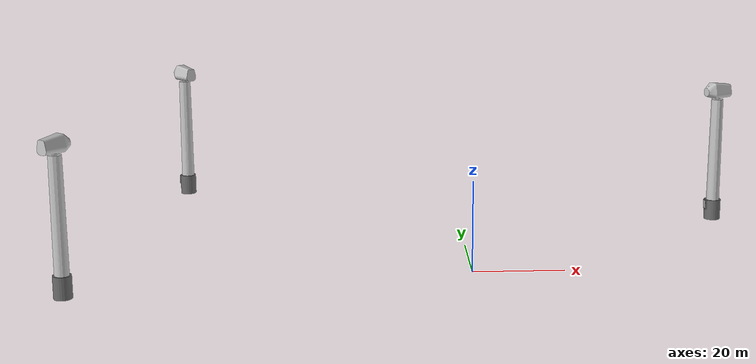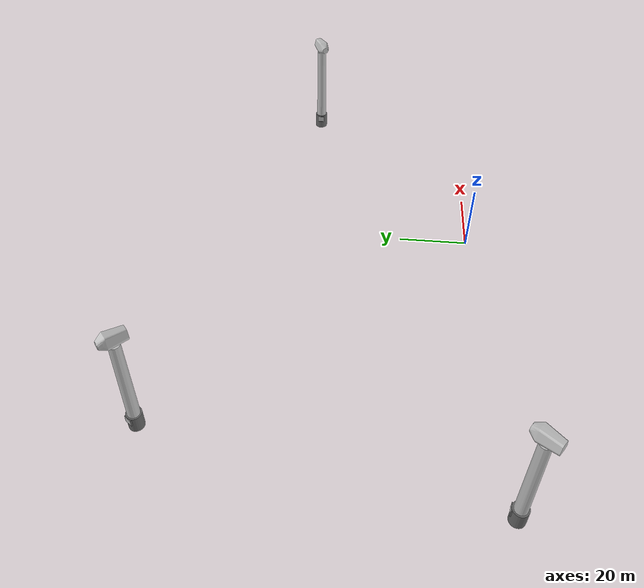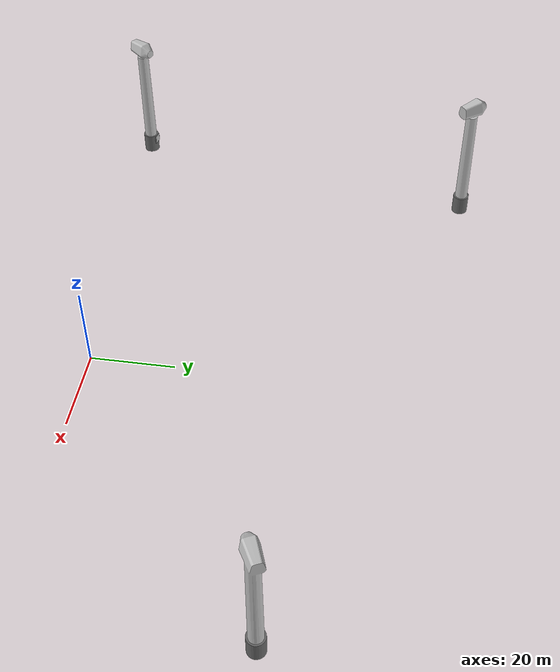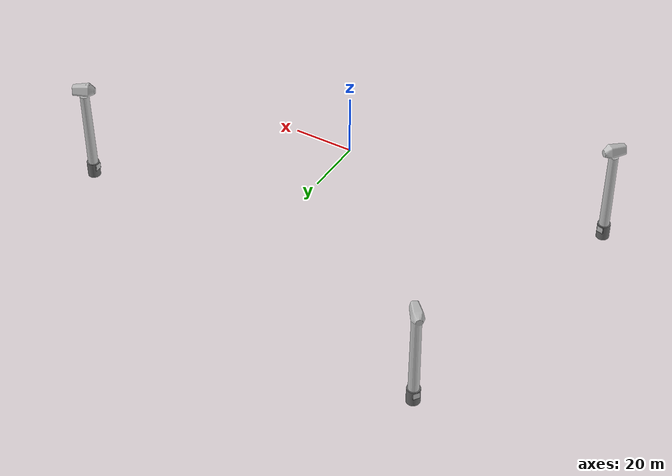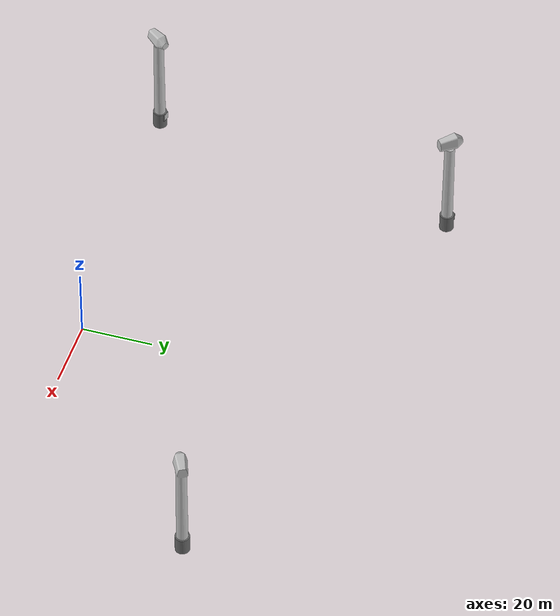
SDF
<sdf version="1.9">
 <world name="aquabot_windturbines_easy">
  <physics name="4ms" type="dart">
   <max_step_size>0.004</max_step_size>
   <real_time_factor>1.0</real_time_factor>
   <real_time_update_rate>0.0</real_time_update_rate>
  </physics>
  <plugin filename="ignition-gazebo-physics-system" name="ignition::gazebo::systems::Physics"/>
  <plugin filename="ignition-gazebo-user-commands-system" name="ignition::gazebo::systems::UserCommands"/>
  <plugin filename="ignition-gazebo-sensors-system" name="ignition::gazebo::systems::Sensors">
   <render_engine>ogre2</render_engine>
   <disable_on_drained_battery>true</disable_on_drained_battery>
  </plugin>
  <plugin filename="ignition-gazebo-imu-system" name="ignition::gazebo::systems::Imu"/>
  <plugin filename="ignition-gazebo-magnetometer-system" name="ignition::gazebo::systems::Magnetometer"/>
  <plugin filename="ignition-gazebo-forcetorque-system" name="ignition::gazebo::systems::ForceTorque"/>
  <plugin filename="ignition-gazebo-scene-broadcaster-system" name="ignition::gazebo::systems::SceneBroadcaster"/>
  <plugin filename="ignition-gazebo-contact-system" name="ignition::gazebo::systems::Contact"/>
  <plugin filename="ignition-gazebo-navsat-system" name="ignition::gazebo::systems::NavSat"/>
  <scene><grid>false</grid><ambient>1.0 1.0 1.0</ambient><background>0.8 0.8 0.8</background></scene>
  <spherical_coordinates>
   <surface_model>EARTH_WGS84</surface_model>
   <world_frame_orientation>ENU</world_frame_orientation>
   <latitude_deg>48.04630</latitude_deg>
   <longitude_deg>-4.97632</longitude_deg>
   <elevation>0.0</elevation>
   <heading_deg>0.0</heading_deg>
  </spherical_coordinates>
  <light type="directional" name="sun">
   <cast_shadows>false</cast_shadows>
   <pose>0 0 10 0 0 0</pose>
   <diffuse>0.8 0.8 0.8 1</diffuse>
   <specular>0.2 0.2 0.2 1</specular>
   <attenuation>
    <range>1000</range>
    <constant>0.9</constant>
    <linear>0.01</linear>
    <quadratic>0.001</quadratic>
   </attenuation>
   <direction>-0.5 0.1 -0.9</direction>
  </light>
  <plugin filename="libUSVWind.so" name="vrx::USVWind">
   <wind_obj>
    <name>aquabot</name>
    <link_name>aquabot/base_link</link_name>
    <coeff_vector>.5 .5 .33</coeff_vector>
   </wind_obj>
   <wind_direction>240</wind_direction>
   <wind_mean_velocity>0.0</wind_mean_velocity>
   <var_wind_gain_constants>0</var_wind_gain_constants>
   <var_wind_time_constants>2</var_wind_time_constants>
   <random_seed>10</random_seed>
   <update_rate>10</update_rate>
   <topic_wind_speed>/vrx/debug/wind/speed</topic_wind_speed>
   <topic_wind_direction>/vrx/debug/wind/direction</topic_wind_direction>
  </plugin>
  <plugin filename="libPublisherPlugin.so" name="vrx::PublisherPlugin">
   <message type="gz.msgs.Param" topic="/vrx/wavefield/parameters" every="2.0">params {
          key: "direction"
          value {
            type: DOUBLE
            double_value: 0.0
          }
        }
        params {
          key: "gain"
          value {
            type: DOUBLE
            double_value: 0.3
          }
        }
        params {
          key: "period"
          value {
            type: DOUBLE
            double_value: 10.0
          }
        }
        params {
          key: "steepness"
          value {
            type: DOUBLE
            double_value: 0.0
          }
        }</message>
  </plugin>
  <generation_seed>AHj1VjJI7VlnxRnv</generation_seed>
  <include>
   <name>aquabot_windturbine_main_0_OK</name>
   <pose>65 50 0 0 0 0.450100</pose>
   <uri>aquabot_windturbine_main</uri>
  </include>
  <include>
   <name>aquabot_marker_0_OK_0</name>
   <pose>65 50 0 0 0 6.277234</pose>
   <uri>aquabot_marker_0_OK</uri>
  </include>
  <include>
   <name>aquabot_windturbine_main_1_KO</name>
   <pose>-85.810648 -6.200278 0 0 0 4.052918</pose>
   <uri>aquabot_windturbine_main</uri>
  </include>
  <include>
   <name>aquabot_marker_1_KO_0</name>
   <pose>-85.810648 -6.200278 0 0 0 4.509710</pose>
   <uri>aquabot_marker_1_KO</uri>
  </include>
  <include>
   <name>aquabot_windturbine_main_2_KO</name>
   <pose>-70.015184 83.216586 0 0 0 5.406940</pose>
   <uri>aquabot_windturbine_main</uri>
  </include>
  <include>
   <name>aquabot_marker_2_KO_0</name>
   <pose>-70.015184 83.216586 0 0 0 5.668543</pose>
   <uri>aquabot_marker_2_KO</uri>
  </include>
  <plugin filename="libWindturbinesInspectionScoringPlugin.so" name="vrx::WindturbinesInspectionScoringPlugin">
   <vehicle>aquabot</vehicle>
   <task_name>windturbines_inspection</task_name>
   <task_info_topic>/vrx/task/info</task_info_topic>
   <initial_state_duration>10</initial_state_duration>
   <ready_state_duration>10</ready_state_duration>
   <running_state_duration>12000</running_state_duration>
   <release_topic>/vrx/release</release_topic>
   <pinger_position>-85.810648 -6.200278 0</pinger_position>
   <phase_search_max_time>20000</phase_search_max_time>
   <phase_rally_period_publish>20.0</phase_rally_period_publish>
   <phase_rally_min_distance>15.0</phase_rally_min_distance>
   <phase_turnaround_number_turns>-1.0</phase_turnaround_number_turns>
   <phase_stabilize_total_time>180</phase_stabilize_total_time>
   <phase_inspection_target_distance>10.0</phase_inspection_target_distance>
   <phase_stabilize_turnaround_mean_period>30</phase_stabilize_turnaround_mean_period>
   <collision_min_distance>10.0</collision_min_distance>
   <collision_finish>true</collision_finish>
   <collision_penality>10</collision_penality>
   <critical_marker_name>aquabot_marker_1_KO_0</critical_marker_name>
   <windturbines>
    <windturbine><id>0</id><status>OK</status><name>aquabot_windturbine_main_0_OK</name></windturbine>
    <windturbine><id>1</id><status>KO</status><name>aquabot_windturbine_main_1_KO</name></windturbine>
    <windturbine><id>2</id><status>KO</status><name>aquabot_windturbine_main_2_KO</name></windturbine>
   </windturbines>
  </plugin>
 </world>
</sdf>

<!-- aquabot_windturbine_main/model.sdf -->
<sdf version="1.5">
  <model name="aquabot_windturbine_main">
    <static>true</static>
    <link name="link">
      <!-- Wind turbine basement-->
      <visual name="base">
        <pose>0 0 0 0 0 0</pose>
        <geometry>
          <cylinder>
            <radius>2</radius>
            <length>5</length>
          </cylinder>
        </geometry>
        <material> <!-- base material -->
          <ambient>0.8 0.8 0.8 1</ambient>
          <diffuse>0.4 0.4 0.4 1</diffuse>
          <specular>0.6 0.6 0.6 1</specular>
          <emissive>0 0 0 1</emissive>
        </material>
      </visual>
      <collision name="collision_base">
        <pose>0 0 0 0 0 0</pose>
        <geometry>
          <cylinder>
            <radius>2</radius>
            <length>5</length>
          </cylinder>
        </geometry>
      </collision>
      <!-- Wind turbine mesh main -->
      <visual name="visual">
        <pose>-3.55 0.0 30.0 0 0 0 </pose>
        <geometry>
          <mesh>
            <uri>mesh/main.dae</uri>
          </mesh>
        </geometry>
      </visual>
      <collision name="collision">
        <pose>0 0 15 0 0 0</pose>
        <geometry>
          <cylinder>
            <radius>1.6</radius>
            <length>30</length>
          </cylinder>
        </geometry>
      </collision>
    </link>
  </model>
</sdf>

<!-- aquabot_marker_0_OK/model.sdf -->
<sdf version="1.5">
  <model name="aquabot_marker_0_OK">
    <static>true</static>
    <link name="link">
      <!-- QR Code basement-->
      <visual name="base">
        <pose>-1.5 0 1.2 0 0 0</pose>
        <geometry>
          <box>
            <size>1 2.2 2.2</size>
          </box>
        </geometry>
        <material> <!-- base material -->
          <ambient>0.8 0.8 0.8 1</ambient>
          <diffuse>0.4 0.4 0.4 1</diffuse>
          <specular>0.6 0.6 0.6 1</specular>
          <emissive>0 0 0 1</emissive>
        </material>
      </visual>
      <collision name="collision_base">
        <pose>-1.5 0 1.2 0 0 0</pose>
        <geometry>
          <box>
            <size>1 2.2 2.2</size>
          </box>
        </geometry>
        <material> <!-- base material -->
          <ambient>0.8 0.8 0.8 1</ambient>
          <diffuse>0.4 0.4 0.4 1</diffuse>
          <specular>0.6 0.6 0.6 1</specular>
          <emissive>0 0 0 1</emissive>
        </material>
      </collision>
      <!-- QRCode-->
      <visual name="visual">
        <pose>-2 0 0.2 0 0 0</pose>
        <geometry>
          <mesh>
            <scale>4 4 4</scale>
            <uri>meshes/Marker0.dae</uri>
          </mesh>
        </geometry>
      </visual>
    </link>
  </model>
</sdf>

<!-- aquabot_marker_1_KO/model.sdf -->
<sdf version="1.5">
  <model name="aquabot_marker_1_KO">
    <static>true</static>
    <link name="link">
      <!-- QR Code basement-->
      <visual name="base">
        <pose>-1.5 0 1.2 0 0 0</pose>
        <geometry>
          <box>
            <size>1 2.2 2.2</size>
          </box>
        </geometry>
        <material> <!-- base material -->
          <ambient>0.8 0.8 0.8 1</ambient>
          <diffuse>0.4 0.4 0.4 1</diffuse>
          <specular>0.6 0.6 0.6 1</specular>
          <emissive>0 0 0 1</emissive>
        </material>
      </visual>
      <collision name="collision_base">
        <pose>-1.5 0 1.2 0 0 0</pose>
        <geometry>
          <box>
            <size>1 2.2 2.2</size>
          </box>
        </geometry>
        <material> <!-- base material -->
          <ambient>0.8 0.8 0.8 1</ambient>
          <diffuse>0.4 0.4 0.4 1</diffuse>
          <specular>0.6 0.6 0.6 1</specular>
          <emissive>0 0 0 1</emissive>
        </material>
      </collision>
      <!-- QRCode-->
      <visual name="visual">
        <pose>-2 0 0.2 0 0 0</pose>
        <geometry>
          <mesh>
            <scale>4 4 4</scale>
            <uri>meshes/Marker0.dae</uri>
          </mesh>
        </geometry>
      </visual>
    </link>
  </model>
</sdf>

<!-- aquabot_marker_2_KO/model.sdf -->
<sdf version="1.5">
  <model name="aquabot_marker_2_KO">
    <static>true</static>
    <link name="link">
      <!-- QR Code basement-->
      <visual name="base">
        <pose>-1.5 0 1.2 0 0 0</pose>
        <geometry>
          <box>
            <size>1 2.2 2.2</size>
          </box>
        </geometry>
        <material> <!-- base material -->
          <ambient>0.8 0.8 0.8 1</ambient>
          <diffuse>0.4 0.4 0.4 1</diffuse>
          <specular>0.6 0.6 0.6 1</specular>
          <emissive>0 0 0 1</emissive>
        </material>
      </visual>
      <collision name="collision_base">
        <pose>-1.5 0 1.2 0 0 0</pose>
        <geometry>
          <box>
            <size>1 2.2 2.2</size>
          </box>
        </geometry>
        <material> <!-- base material -->
          <ambient>0.8 0.8 0.8 1</ambient>
          <diffuse>0.4 0.4 0.4 1</diffuse>
          <specular>0.6 0.6 0.6 1</specular>
          <emissive>0 0 0 1</emissive>
        </material>
      </collision>
      <!-- QRCode-->
      <visual name="visual">
        <pose>-2 0 0.2 0 0 0</pose>
        <geometry>
          <mesh>
            <scale>4 4 4</scale>
            <uri>meshes/Marker0.dae</uri>
          </mesh>
        </geometry>
      </visual>
    </link>
  </model>
</sdf>
